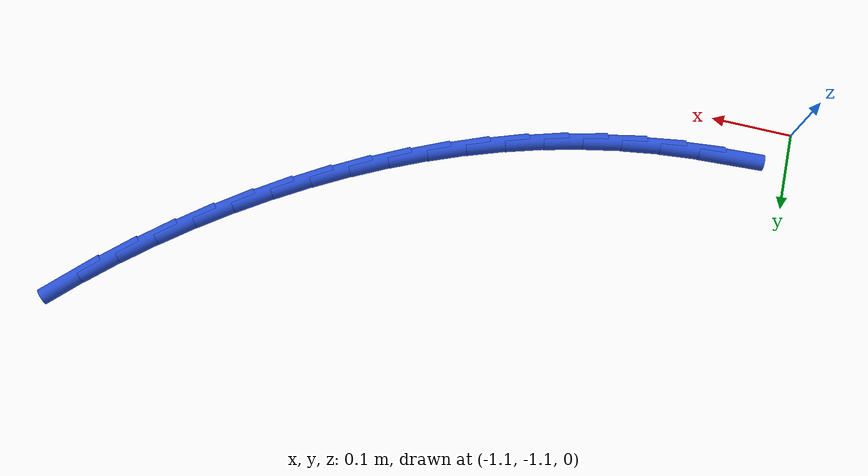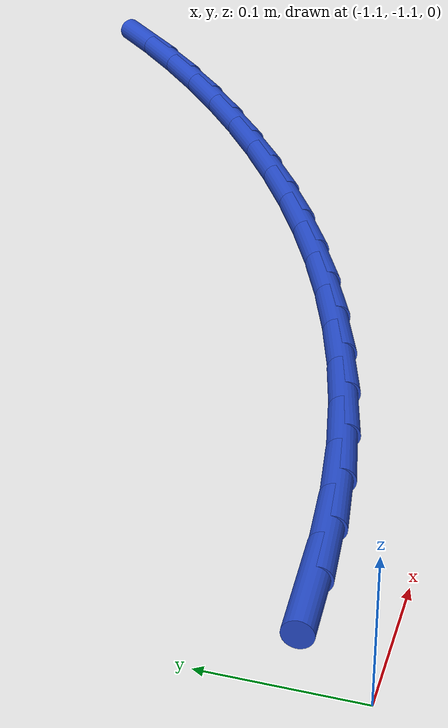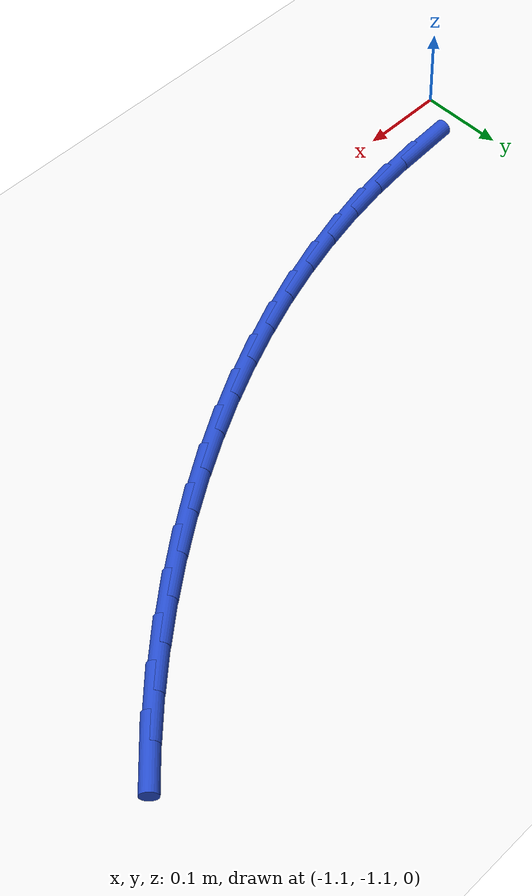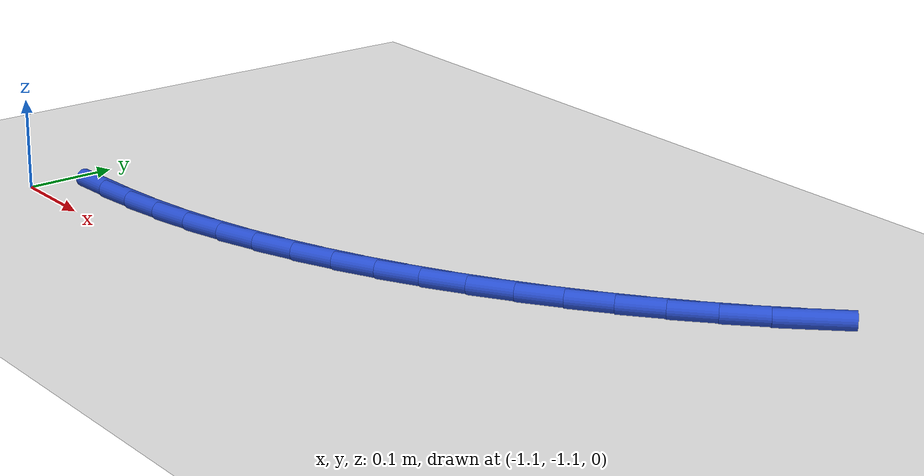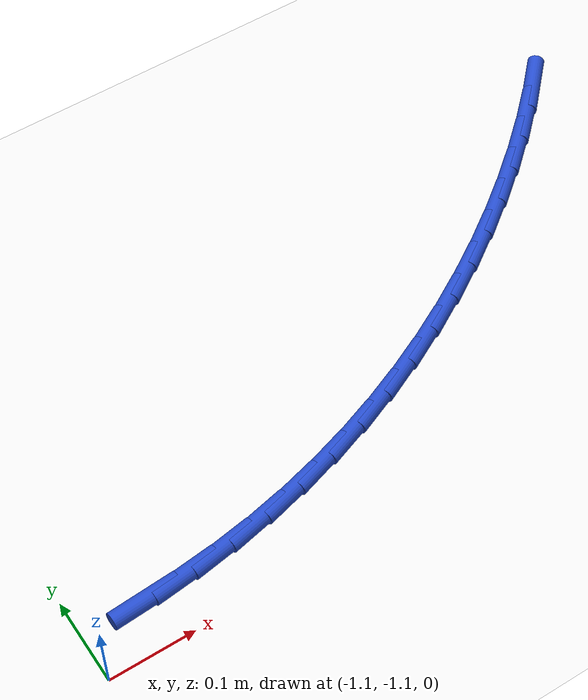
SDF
<sdf version="1.6">
 <world name="default">
  <model name="ground_plane">
   <static>1</static>
   <link name="link">
    <collision name="collision">
     <geometry><plane><normal>0 0 1</normal><size>100 100</size></plane></geometry>
     <surface><friction><ode><mu>100</mu><mu2>50</mu2></ode></friction></surface>
    </collision>
    <visual name="visual">
     <cast_shadows>0</cast_shadows>
     <geometry><plane><normal>0 0 1</normal><size>100 100</size></plane></geometry>
     <material>
      <script><uri>file://media/materials/scripts/gazebo.material</uri><name>Gazebo/WhiteGlow</name></script>
     </material>
    </visual>
   </link>
  </model>
  <model name="line">
   <link name="link_107">
    <pose>-1.0281862042218244 -1.0482611445188408 0.01 0 1.57 0.06046110724105903</pose>
    <collision name="collision">
     <geometry><cylinder><radius>0.01</radius><length>0.08</length></cylinder></geometry>
    </collision>
    <visual name="visual">
     <material>
      <script><name>Gazebo/Blue</name><uri>file://media/materials/scripts/gazebo.material</uri></script>
     </material>
     <geometry><cylinder><radius>0.01</radius><length>0.08</length></cylinder></geometry>
    </visual>
   </link>
   <link name="link_108">
    <pose>-0.9801785329074959 -1.0453550055173773 0.01 0 1.57 0.10883241827917375</pose>
    <collision name="collision">
     <geometry><cylinder><radius>0.01</radius><length>0.08</length></cylinder></geometry>
    </collision>
    <visual name="visual">
     <material>
      <script><name>Gazebo/Blue</name><uri>file://media/materials/scripts/gazebo.material</uri></script>
     </material>
     <geometry><cylinder><radius>0.01</radius><length>0.08</length></cylinder></geometry>
    </visual>
   </link>
   <link name="link_109">
    <pose>-0.9324096826969202 -1.0401355825967238 0.01 0 1.57 0.16023691665233364</pose>
    <collision name="collision">
     <geometry><cylinder><radius>0.01</radius><length>0.08</length></cylinder></geometry>
    </collision>
    <visual name="visual">
     <material>
      <script><name>Gazebo/Blue</name><uri>file://media/materials/scripts/gazebo.material</uri></script>
     </material>
     <geometry><cylinder><radius>0.01</radius><length>0.08</length></cylinder></geometry>
    </visual>
   </link>
   <link name="link_110">
    <pose>-0.8849010445689217 -1.0324571150330966 0.01 0 1.57 0.21259526822218003</pose>
    <collision name="collision">
     <geometry><cylinder><radius>0.01</radius><length>0.08</length></cylinder></geometry>
    </collision>
    <visual name="visual">
     <material>
      <script><name>Gazebo/Blue</name><uri>file://media/materials/scripts/gazebo.material</uri></script>
     </material>
     <geometry><cylinder><radius>0.01</radius><length>0.08</length></cylinder></geometry>
    </visual>
   </link>
   <link name="link_111">
    <pose>-0.8377002114735878 -1.0222684790160177 0.01 0 1.57 0.2632391645950997</pose>
    <collision name="collision">
     <geometry><cylinder><radius>0.01</radius><length>0.08</length></cylinder></geometry>
    </collision>
    <visual name="visual">
     <material>
      <script><name>Gazebo/Blue</name><uri>file://media/materials/scripts/gazebo.material</uri></script>
     </material>
     <geometry><cylinder><radius>0.01</radius><length>0.08</length></cylinder></geometry>
    </visual>
   </link>
   <link name="link_112">
    <pose>-0.790892299386207 -1.009654077304628 0.01 0 1.57 0.3120642478312389</pose>
    <collision name="collision">
     <geometry><cylinder><radius>0.01</radius><length>0.08</length></cylinder></geometry>
    </collision>
    <visual name="visual">
     <material>
      <script><name>Gazebo/Blue</name><uri>file://media/materials/scripts/gazebo.material</uri></script>
     </material>
     <geometry><cylinder><radius>0.01</radius><length>0.08</length></cylinder></geometry>
    </visual>
   </link>
   <link name="link_113">
    <pose>-0.7445653161110064 -0.9947087574357464 0.01 0 1.57 0.35919447369054003</pose>
    <collision name="collision">
     <geometry><cylinder><radius>0.01</radius><length>0.08</length></cylinder></geometry>
    </collision>
    <visual name="visual">
     <material>
      <script><name>Gazebo/Blue</name><uri>file://media/materials/scripts/gazebo.material</uri></script>
     </material>
     <geometry><cylinder><radius>0.01</radius><length>0.08</length></cylinder></geometry>
    </visual>
   </link>
   <link name="link_114">
    <pose>-0.6988072694522144 -0.9775273669461914 0.01 0 1.57 0.4047713296493388</pose>
    <collision name="collision">
     <geometry><cylinder><radius>0.01</radius><length>0.08</length></cylinder></geometry>
    </collision>
    <visual name="visual">
     <material>
      <script><name>Gazebo/Blue</name><uri>file://media/materials/scripts/gazebo.material</uri></script>
     </material>
     <geometry><cylinder><radius>0.01</radius><length>0.08</length></cylinder></geometry>
    </visual>
   </link>
   <link name="link_115">
    <pose>-0.6537061672140576 -0.9582047533727813 0.01 0 1.57 0.4489488782130915</pose>
    <collision name="collision">
     <geometry><cylinder><radius>0.01</radius><length>0.08</length></cylinder></geometry>
    </collision>
    <visual name="visual">
     <material>
      <script><name>Gazebo/Blue</name><uri>file://media/materials/scripts/gazebo.material</uri></script>
     </material>
     <geometry><cylinder><radius>0.01</radius><length>0.08</length></cylinder></geometry>
    </visual>
   </link>
   <link name="link_116">
    <pose>-0.6093500172007638 -0.9368357642523353 0.01 0 1.57 0.49188991131588705</pose>
    <collision name="collision">
     <geometry><cylinder><radius>0.01</radius><length>0.08</length></cylinder></geometry>
    </collision>
    <visual name="visual">
     <material>
      <script><name>Gazebo/Blue</name><uri>file://media/materials/scripts/gazebo.material</uri></script>
     </material>
     <geometry><cylinder><radius>0.01</radius><length>0.08</length></cylinder></geometry>
    </visual>
   </link>
   <link name="link_117">
    <pose>-0.5658268272165594 -0.9135152471216712 0.01 0 1.57 0.5337631196317341</pose>
    <collision name="collision">
     <geometry><cylinder><radius>0.01</radius><length>0.08</length></cylinder></geometry>
    </collision>
    <visual name="visual">
     <material>
      <script><name>Gazebo/Blue</name><uri>file://media/materials/scripts/gazebo.material</uri></script>
     </material>
     <geometry><cylinder><radius>0.01</radius><length>0.08</length></cylinder></geometry>
    </visual>
   </link>
   <link name="link_118">
    <pose>-0.5232246050656733 -0.8883380495176083 0.01 0 1.57 0.5747411478726906</pose>
    <collision name="collision">
     <geometry><cylinder><radius>0.01</radius><length>0.08</length></cylinder></geometry>
    </collision>
    <visual name="visual">
     <material>
      <script><name>Gazebo/Blue</name><uri>file://media/materials/scripts/gazebo.material</uri></script>
     </material>
     <geometry><cylinder><radius>0.01</radius><length>0.08</length></cylinder></geometry>
    </visual>
   </link>
   <link name="link_119">
    <pose>-0.48163135855233213 -0.8613990189769647 0.01 0 1.57 0.6149993977883744</pose>
    <collision name="collision">
     <geometry><cylinder><radius>0.01</radius><length>0.08</length></cylinder></geometry>
    </collision>
    <visual name="visual">
     <material>
      <script><name>Gazebo/Blue</name><uri>file://media/materials/scripts/gazebo.material</uri></script>
     </material>
     <geometry><cylinder><radius>0.01</radius><length>0.08</length></cylinder></geometry>
    </visual>
   </link>
   <link name="link_120">
    <pose>-0.4411350954807634 -0.8327930030365595 0.01 0 1.57 0.654715445334062</pose>
    <collision name="collision">
     <geometry><cylinder><radius>0.01</radius><length>0.08</length></cylinder></geometry>
    </collision>
    <visual name="visual">
     <material>
      <script><name>Gazebo/Blue</name><uri>file://media/materials/scripts/gazebo.material</uri></script>
     </material>
     <geometry><cylinder><radius>0.01</radius><length>0.08</length></cylinder></geometry>
    </visual>
   </link>
   <link name="link_121">
    <pose>-0.4018238236551944 -0.8026148492332106 0.01 0 1.57 0.6940767775832559</pose>
    <collision name="collision">
     <geometry><cylinder><radius>0.01</radius><length>0.08</length></cylinder></geometry>
    </collision>
    <visual name="visual">
     <material>
      <script><name>Gazebo/Blue</name><uri>file://media/materials/scripts/gazebo.material</uri></script>
     </material>
     <geometry><cylinder><radius>0.01</radius><length>0.08</length></cylinder></geometry>
    </visual>
   </link>
   <link name="link_122">
    <pose>-0.36378565671223734 -0.770958989237898 0.01 0 1.57 0.7337101447354182</pose>
    <collision name="collision">
     <geometry><cylinder><radius>0.01</radius><length>0.08</length></cylinder></geometry>
    </collision>
    <visual name="visual">
     <material>
      <script><name>Gazebo/Blue</name><uri>file://media/materials/scripts/gazebo.material</uri></script>
     </material>
     <geometry><cylinder><radius>0.01</radius><length>0.08</length></cylinder></geometry>
    </visual>
   </link>
   <link name="link_123">
    <pose>-0.32711483208467135 -0.7378957914103226 0.01 0 1.57 0.7744429422128494</pose>
    <collision name="collision">
     <geometry><cylinder><radius>0.01</radius><length>0.08</length></cylinder></geometry>
    </collision>
    <visual name="visual">
     <material>
      <script><name>Gazebo/Blue</name><uri>file://media/materials/scripts/gazebo.material</uri></script>
     </material>
     <geometry><cylinder><radius>0.01</radius><length>0.08</length></cylinder></geometry>
    </visual>
   </link>
   <link name="link_124">
    <pose>-0.29191495128922545 -0.7034588281651755 0.01 0 1.57 0.8164482600183779</pose>
    <collision name="collision">
     <geometry><cylinder><radius>0.01</radius><length>0.08</length></cylinder></geometry>
    </collision>
    <visual name="visual">
     <material>
      <script><name>Gazebo/Blue</name><uri>file://media/materials/scripts/gazebo.material</uri></script>
     </material>
     <geometry><cylinder><radius>0.01</radius><length>0.08</length></cylinder></geometry>
    </visual>
   </link>
  </model>
 </world>
</sdf>
